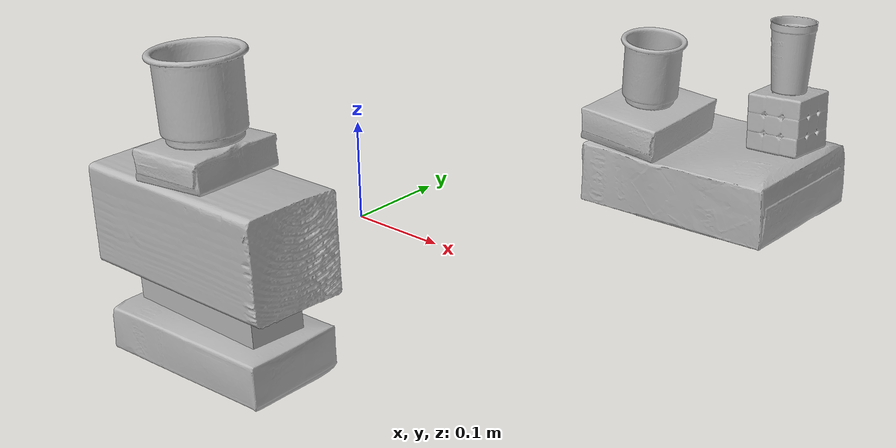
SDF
<?xml version="1.0" ?>
<sdf version="1.4">

  <world name="default">

    <light name="light1" type="point">

      <pose>0 0 1 0 0 0</pose>

      <diffuse>3 3 3 1</diffuse>

      <specular>3 3 3 1</specular>

    </light>

    <light name="light2" type="point">

      <pose>0 0.5 2 0 0 0</pose>

      <diffuse>1 1 1 1</diffuse>

      <specular>1 1 1 1</specular>

    </light>

    <light name="light3" type="point">

      <pose>0 0.5 2 0 0 0</pose>

      <diffuse>3 3 3 1</diffuse>

      <specular>3 3 3 1</specular>

    </light>

    <scene>

      <ambient>0.7 0.7 0.7</ambient>

    </scene>

    <model name="box21">

      <link name="link_box21">

        <collision name="default">

          <geometry>

            <mesh>

              <uri>model://cracker_box/collision_meshes/collision.obj</uri>

              <scale>1.0 1.0 1.0</scale>

            </mesh>

          </geometry>

          <surface>

            <friction>

              <ode>

                <mu>0.5</mu>

                <mu2>0.5</mu2>

              </ode>

            </friction>

          </surface>

        </collision>

        <visual name="default">

          <geometry>

            <mesh>

              <uri>model://cracker_box/visual_meshes/visual.dae</uri>

              <scale>1.0 1.0 1.0</scale>

            </mesh>

          </geometry>

        </visual>

        <inertial>

          <mass>2.967785358428955</mass>

          <pose>0.0009464151808060706 0.00025434247800149024 -0.0017029535956680775 -0.0003162076618733006 -0.011106490531610344 0.00254679570085012</pose>

          <inertia>

            <ixx>0.0075487206</ixx>

            <iyy>0.012464421</iyy>

            <izz>0.017787872</izz>

            <ixy>0</ixy>

            <ixz>0</ixz>

            <iyz>0</iyz>

          </inertia>

        </inertial>

      </link>

      <pose>0.2497454285621643 0.2506246864795685 0.0364818274974823 -0.011789272656819947 -0.007367027154985549 0.00041863594347206484</pose>

    </model>

    <model name="box22">

      <link name="link_box22">

        <collision name="default">

          <geometry>

            <mesh>

              <uri>model://rubiks_cube/collision_meshes/collision.obj</uri>

              <scale>1.0 1.0 1.0</scale>

            </mesh>

          </geometry>

          <surface>

            <friction>

              <ode>

                <mu>0.5</mu>

                <mu2>0.5</mu2>

              </ode>

            </friction>

          </surface>

        </collision>

        <visual name="default">

          <geometry>

            <mesh>

              <uri>model://rubiks_cube/visual_meshes/visual.dae</uri>

              <scale>1.0 1.0 1.0</scale>

            </mesh>

          </geometry>

        </visual>

        <inertial>

          <mass>0.2631562352180481</mass>

          <pose>2.6721041649580002e-05 5.2569666877388954e-05 -7.264316082000732e-06 -0.05467275409565722 -0.09814109117242276 -0.03445701547045584</pose>

          <inertia>

            <ixx>0.0001454115</ixx>

            <iyy>0.00014473335</iyy>

            <izz>0.00014661645</izz>

            <ixy>0</ixy>

            <ixz>0</ixz>

            <iyz>0</iyz>

          </inertia>

        </inertial>

      </link>

      <pose>0.3179350197315216 0.27226004004478455 0.10146277397871017 -0.060963980352229136 -0.05227534392824286 0.010991091225095168</pose>

    </model>

    <model name="box23">

      <link name="link_box23">

        <collision name="default">

          <geometry>

            <mesh>

              <uri>model://pudding_box/collision_meshes/collision.obj</uri>

              <scale>1.0 1.0 1.0</scale>

            </mesh>

          </geometry>

          <surface>

            <friction>

              <ode>

                <mu>0.5</mu>

                <mu2>0.5</mu2>

              </ode>

            </friction>

          </surface>

        </collision>

        <visual name="default">

          <geometry>

            <mesh>

              <uri>model://pudding_box/visual_meshes/visual.dae</uri>

              <scale>1.0 1.0 1.0</scale>

            </mesh>

          </geometry>

        </visual>

        <inertial>

          <mass>0.41353368759155273</mass>

          <pose>0.0004894821904599667 0.0008067885646596551 -0.0005188827635720372 0.005213101814074476 -0.006603797777454713 0.020079821436089117</pose>

          <inertia>

            <ixx>0.0004674785</ixx>

            <iyy>0.00031452288</iyy>

            <izz>0.0006903542</izz>

            <ixy>0</ixy>

            <ixz>0</ixz>

            <iyz>0</iyz>

          </inertia>

        </inertial>

      </link>

      <pose>0.19062383472919464 0.21980145573616028 0.08705411851406097 0.026334691082742282 0.07326813681344607 -0.004195835336611334</pose>

    </model>

    <model name="cup1">

      <link name="link_cup1">

        <collision name="default">

          <geometry>

            <mesh>

              <uri>model://cup_small/collision_meshes/collision.obj</uri>

              <scale>1.0 1.0 1.0</scale>

            </mesh>

          </geometry>

          <surface>

            <friction>

              <ode>

                <mu>0.5</mu>

                <mu2>0.5</mu2>

              </ode>

            </friction>

          </surface>

        </collision>

        <visual name="default">

          <geometry>

            <mesh>

              <uri>model://cup_small/visual_meshes/visual.dae</uri>

              <scale>1.0 1.0 1.0</scale>

            </mesh>

          </geometry>

        </visual>

        <inertial>

          <mass>0.02095564641058445</mass>

          <pose>0.00010482477955520153 -0.0003377848770469427 -0.01074282731860876 -0.011492722259696445 -0.015280529703091471 -0.5058449819350237</pose>

          <inertia>

            <ixx>1.2338362e-05</ixx>

            <iyy>1.240201e-05</iyy>

            <izz>5.5708097e-06</izz>

            <ixy>0</ixy>

            <ixz>0</ixz>

            <iyz>0</iyz>

          </inertia>

        </inertial>

      </link>

      <pose>0.31647899746894836 0.2746181786060333 0.16525615751743317 -0.06707087721359493 -0.03533655187146697 0.017289131012227524</pose>

    </model>

    <model name="cup2">

      <link name="link_cup2">

        <collision name="default">

          <geometry>

            <mesh>

              <uri>model://c_cups/collision_meshes/collision.obj</uri>

              <scale>1.0 1.0 1.0</scale>

            </mesh>

          </geometry>

          <surface>

            <friction>

              <ode>

                <mu>0.5</mu>

                <mu2>0.5</mu2>

              </ode>

            </friction>

          </surface>

        </collision>

        <visual name="default">

          <geometry>

            <mesh>

              <uri>model://c_cups/visual_meshes/visual.dae</uri>

              <scale>1.0 1.0 1.0</scale>

            </mesh>

          </geometry>

        </visual>

        <inertial>

          <mass>0.04905003309249878</mass>

          <pose>0.0007237255922518671 0.0020153908990323544 -0.0012750986497849226 0.30215813246853196 0.013461388587527759 -0.08771773533446486</pose>

          <inertia>

            <ixx>3.6477843e-05</ixx>

            <iyy>3.583322e-05</iyy>

            <izz>3.225985e-05</izz>

            <ixy>0</ixy>

            <ixz>0</ixz>

            <iyz>0</iyz>

          </inertia>

        </inertial>

      </link>

      <pose>0.1928912103176117 0.21906259655952454 0.1388852894306183 0.03222341381235683 0.0766317859234998 0.014124595442040552</pose>

    </model>

    <model name="box11">

      <link name="link_box11">

        <collision name="default">

          <geometry>

            <mesh>

              <uri>model://sugar_box/collision_meshes/collision.obj</uri>

              <scale>1.0 1.0 1.0</scale>

            </mesh>

          </geometry>

          <surface>

            <friction>

              <ode>

                <mu>0.5</mu>

                <mu2>0.5</mu2>

              </ode>

            </friction>

          </surface>

        </collision>

        <visual name="default">

          <geometry>

            <mesh>

              <uri>model://sugar_box/visual_meshes/visual.dae</uri>

              <scale>1.0 1.0 1.0</scale>

            </mesh>

          </geometry>

        </visual>

        <inertial>

          <mass>0.9405714869499207</mass>

          <pose>0.0010343727190047503 3.849109634757042e-05 -0.0003636480832938105 -0.00040462618385709627 0.0010506635220579009 0.0026153790218148127</pose>

          <inertia>

            <ixx>0.0007836817</ixx>

            <iyy>0.0025330195</iyy>

            <izz>0.0030323272</izz>

            <ixy>0</ixy>

            <ixz>0</ixz>

            <iyz>0</iyz>

          </inertia>

        </inertial>

      </link>

      <pose>0.11908304691314697 -0.2802685797214508 0.02279902994632721 0.0006076707142607283 -0.02337186551303194 0.00010608949121045607</pose>

    </model>

    <model name="box12">

      <link name="link_box12">

        <collision name="default">

          <geometry>

            <mesh>

              <uri>model://jenga/collision_meshes/collision.obj</uri>

              <scale>1.0 1.0 1.0</scale>

            </mesh>

          </geometry>

          <surface>

            <friction>

              <ode>

                <mu>0.5</mu>

                <mu2>0.5</mu2>

              </ode>

            </friction>

          </surface>

        </collision>

        <visual name="default">

          <geometry>

            <mesh>

              <uri>model://jenga/visual_meshes/visual.dae</uri>

              <scale>1.0 1.0 1.0</scale>

            </mesh>

          </geometry>

        </visual>

        <inertial>

          <mass>0.2285791039466858</mass>

          <pose>-2.502855807051674e-07 -0.00010250010382151231 -4.0923405322246253e-05 0.0 -7.342155186052628e-07 0.0</pose>

          <inertia>

            <ixx>6.3253385e-05</ixx>

            <iyy>0.00042860323</iyy>

            <izz>0.00045757034</izz>

            <ixy>0</ixy>

            <ixz>0</ixz>

            <iyz>0</iyz>

          </inertia>

        </inertial>

      </link>

      <pose>0.1182866245508194 -0.2799941301345825 0.060136400163173676 0.004210733451017364 -0.048357075967899656 -0.07192532711554704</pose>

    </model>

    <model name="box13">

      <link name="link_box13">

        <collision name="default">

          <geometry>

            <mesh>

              <uri>model://wood_block/collision_meshes/collision.obj</uri>

              <scale>1.0 1.0 1.0</scale>

            </mesh>

          </geometry>

          <surface>

            <friction>

              <ode>

                <mu>0.5</mu>

                <mu2>0.5</mu2>

              </ode>

            </friction>

          </surface>

        </collision>

        <visual name="default">

          <geometry>

            <mesh>

              <uri>model://wood_block/visual_meshes/visual.dae</uri>

              <scale>1.0 1.0 1.0</scale>

            </mesh>

          </geometry>

        </visual>

        <inertial>

          <mass>1.608048677444458</mass>

          <pose>-5.813315056002466e-06 -0.000570809468626976 0.0002640858292579651 -0.05220975529066727 -0.005192695547513155 -0.006861377927637377</pose>

          <inertia>

            <ixx>0.002151813</ixx>

            <iyy>0.006797577</iyy>

            <izz>0.0067721503</izz>

            <ixy>0</ixy>

            <ixz>0</ixz>

            <iyz>0</iyz>

          </inertia>

        </inertial>

      </link>

      <pose>0.11605259031057358 -0.27862489223480225 0.12018421292304993 -0.004983436883599428 -0.040928153285339705 -0.044622683854579556</pose>

    </model>

    <model name="box14">

      <link name="link_box14">

        <collision name="default">

          <geometry>

            <mesh>

              <uri>model://gelatin_box/collision_meshes/collision.obj</uri>

              <scale>1.0 1.0 1.0</scale>

            </mesh>

          </geometry>

          <surface>

            <friction>

              <ode>

                <mu>0.5</mu>

                <mu2>0.5</mu2>

              </ode>

            </friction>

          </surface>

        </collision>

        <visual name="default">

          <geometry>

            <mesh>

              <uri>model://gelatin_box/visual_meshes/visual.dae</uri>

              <scale>1.0 1.0 1.0</scale>

            </mesh>

          </geometry>

        </visual>

        <inertial>

          <mass>0.228233203291893</mass>

          <pose>0.0004319618456065655 0.00011156871914863586 -0.0003640321083366871 -0.0010503721031013481 -0.004755817754301117 0.016440566922732165</pose>

          <inertia>

            <ixx>0.000161114</ixx>

            <iyy>0.0001150829</iyy>

            <izz>0.0002452514</izz>

            <ixy>0</ixy>

            <ixz>0</ixz>

            <iyz>0</iyz>

          </inertia>

        </inertial>

      </link>

      <pose>0.11426437646150589 -0.2793906331062317 0.1809442639350891 -0.0034127704142393914 -0.05365125169260745 0.03443499212135252</pose>

    </model>

    <model name="cup15">

      <link name="link_cup15">

        <collision name="default">

          <geometry>

            <mesh>

              <uri>model://f_cups/collision_meshes/collision.obj</uri>

              <scale>1.0 1.0 1.0</scale>

            </mesh>

          </geometry>

          <surface>

            <friction>

              <ode>

                <mu>0.5</mu>

                <mu2>0.5</mu2>

              </ode>

            </friction>

          </surface>

        </collision>

        <visual name="default">

          <geometry>

            <mesh>

              <uri>model://f_cups/visual_meshes/visual.dae</uri>

              <scale>1.0 1.0 1.0</scale>

            </mesh>

          </geometry>

        </visual>

        <inertial>

          <mass>0.05267045274376869</mass>

          <pose>-0.003171468386426568 -0.0006240073125809431 -0.003655537962913513 0.7862325736201227 -0.2607934836260618 -0.18237270236977254</pose>

          <inertia>

            <ixx>4.9511644e-05</ixx>

            <iyy>5.193826e-05</iyy>

            <izz>5.4069198e-05</izz>

            <ixy>0</ixy>

            <ixz>0</ixz>

            <iyz>0</iyz>

          </inertia>

        </inertial>

      </link>

      <pose>0.11267941445112228 -0.2786937952041626 0.23181423544883728 -0.016852046529606052 -0.07775956789838445 0.007324472866794581</pose>

    </model>

  </world>

</sdf>
